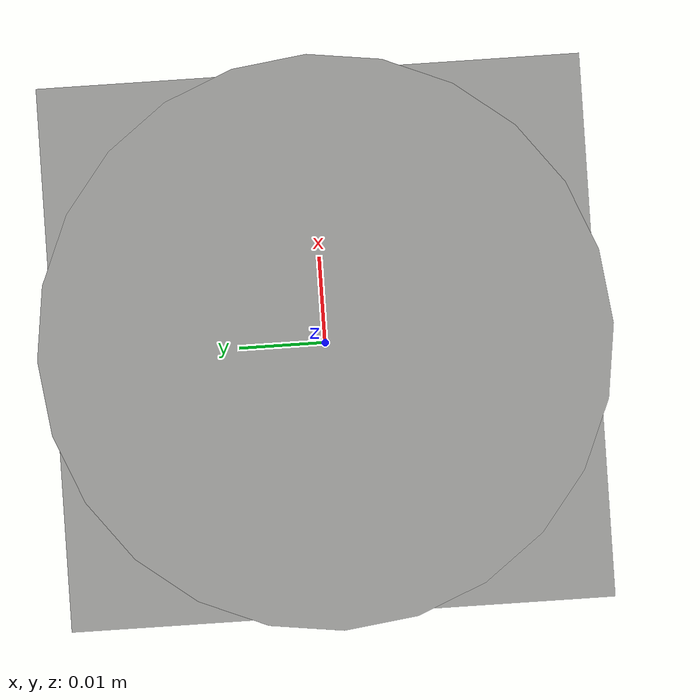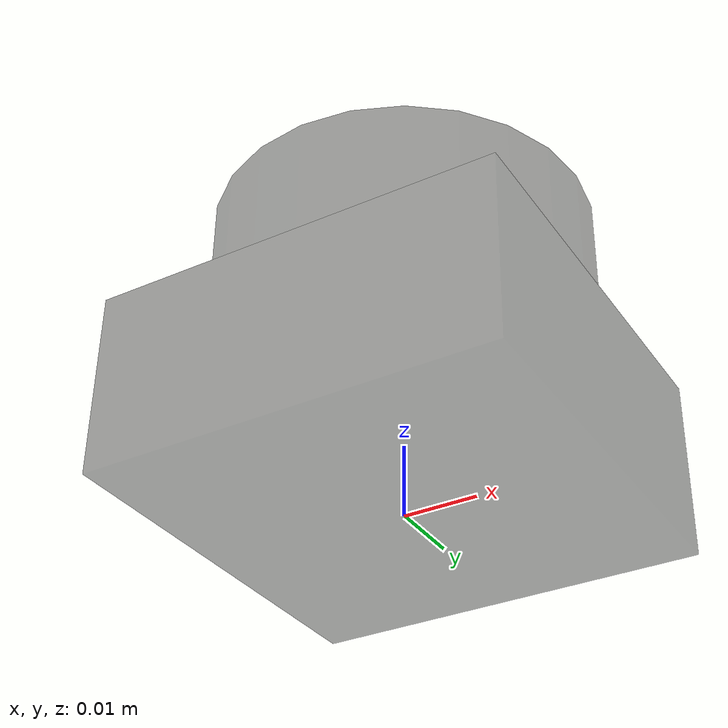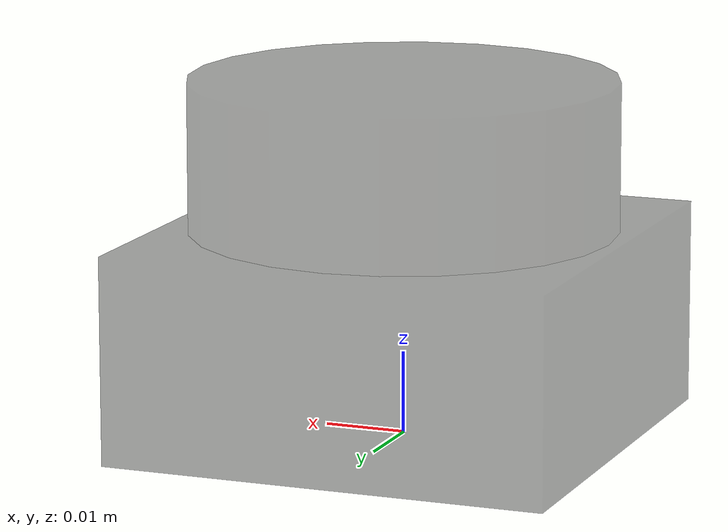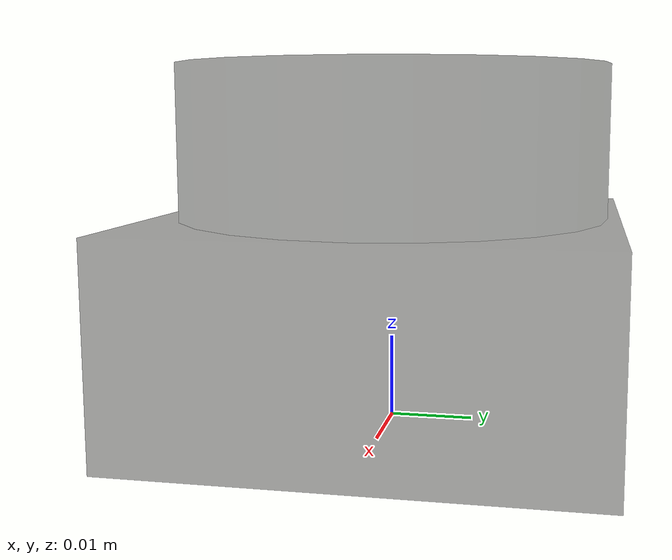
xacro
<?xml version="1.0"?>
<robot xmlns:xacro="http://www.ros.org/wiki/xacro" >

  <!-- TODO  check if works as an include -->

  <material name="C1_black">
    <color rgba="0 0 0 0.4"/>
  </material>

  <!-- Empty first link "world" -->
  <link name="world" />

  <!-- Base_link -->
  <link name="base_link" />

  <!-- Footprint_link -->
  <link name="footprint_link" />

  <!-- A simple fixed joint from our empty world link, to our base. -->
  <!-- The base origin is not offset from the world origin. -->
  <joint name="world_joint" type="fixed">
    <origin xyz="0 0 0" rpy="0 0 0"/>
    <parent link="world"/>
    <child link="base_link"/>
  </joint>

  <joint name="footprint_joint" type="fixed">
    <origin xyz="0 0 0" rpy="0 0 0"/>
    <parent link="base_link"/>
    <child link="footprint_link"/>
  </joint>

  <!-- Macro's -->
  <xacro:include filename="$(find d2rbot_description)/urdf/default_inertial.urdf.xacro"/>

  <!-- C1 lidar macro -->
  <xacro:macro name="C1-lidar" params="prefix parent">

    <!-- Properties C1       -->
    <!-- Box                 -->
    <!--   length   : 0,0550 -->
    <!--   width    : 0,0550 -->
    <!--   height   : 0,0253 -->
    <!-- Cylinder         -->
    <!--   diameter : 0.0520 -->
    <!--   height   : 0,0182 -->
    <!-- Mass : 0.096        -->

    <link name="${prefix}_link">

      <visual>
        <geometry>
          <box size="0.0550 0.0550 0.0253"/>
        </geometry>
        <origin xyz="0.0 0.0 ${0.0253/2}" rpy="0.0 0.0 0.0"/>
        <material name="C1_black"/>
      </visual>
      <visual>
        <origin xyz="0 0 ${0.0253 + (0.0182/2)}" rpy="0 0 0" />
        <geometry>
          <cylinder length="0.0182" radius="${0.0520/2}"/>
        </geometry>
        <material name="C1_black"/>
      </visual>
      <collision>
        <geometry>
          <box size="0.0550 0.0550 ${0.0253 + 0.0182}"/>
        </geometry>
      </collision>
      <xacro:default_box_inertial mass="0.096" />
    </link>
    <joint name="${parent}_to_${prefix}_joint" type="fixed">
      <parent link="${parent}_link"/>
      <child link="${prefix}_link"/>
      <origin xyz="0.0 0.0 0.0"/>
    </joint>

  </xacro:macro>

  <!-- Start of the actual C1 lidar -->
  <xacro:C1-lidar prefix="unique" parent="base"/>

</robot>

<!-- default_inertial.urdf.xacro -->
<robot xmlns:xacro="http://www.ros.org/wiki/xacro">

  <xacro:macro name="default_generic_inertial" params="mass">
    <inertial>
      <mass value="${mass}" />
      <inertia ixx="1e-3" ixy="0.0" ixz="0.0" iyy="1e-3" iyz="0.0" izz="1e-3" />
    </inertial>
  </xacro:macro>

  <xacro:macro name="default_box_inertial" params="mass">
    <inertial>
      <mass value="${mass}"/>
      <!-- Inertia for a box: ixx=iyy=izz=1.0, ixy=ixz=iyz=0 -->
      <inertia ixx="1.0" ixy="0.0" ixz="0.0" iyy="1.0" iyz="0.0" izz="1.0"/>
    </inertial>
  </xacro:macro>

  <xacro:macro name="default_cylinder_inertial" params="mass radius height">
    <inertial>
      <mass value="${mass}"/>
      <!-- Inertia for a cylinder: ixx = iyy = m*(3r^2 + h^2)/12, izz = m*r^2/2, ixy=ixz=iyz=0 -->
      <inertia ixx="${mass * (3 * radius * radius + height * height) / 12}"
               iyy="${mass * (3 * radius * radius + height * height) / 12}"
               izz="${mass * radius * radius / 2}"
               ixy="0" iyz="0" ixz="0" />
    </inertial>
  </xacro:macro>

  <xacro:macro name="default_sphere_inertial" params="mass radius">
    <inertial>
      <origin xyz="0 0 0" rpy="0 0 0"/>
      <!-- The inertia values for a uniform density sphere -->
      <!-- ixx = iyy = izz = (2/5) * m * r^2, ixy=ixz=iyz=0 -->
      <inertia ixx="${(2.0/5.0) * mass * radius*radius}"
               iyy="${(2.0/5.0) * mass * radius*radius}"
               izz="${(2.0/5.0) * mass * radius*radius}"
               ixy="0" iyz="0" ixz="0" />
      <mass value="${mass}" />
    </inertial>
  </xacro:macro>

</robot>
